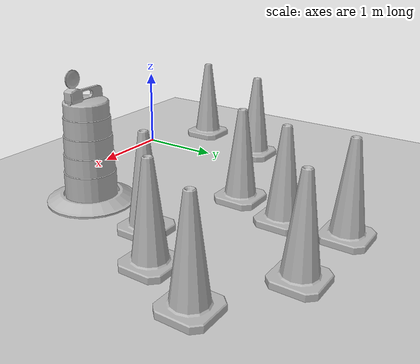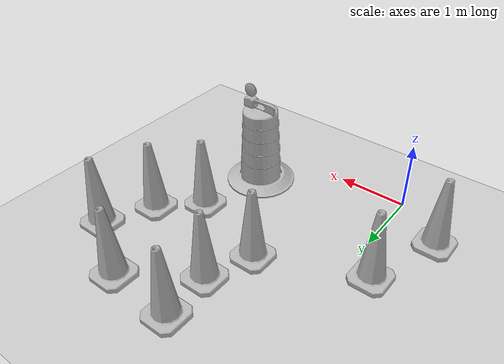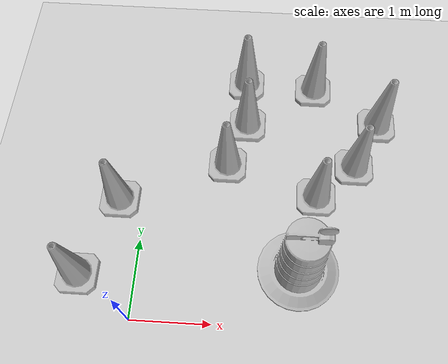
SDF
<sdf version="1.7">
 <world name="default">
  <light name="sun" type="directional">
   <pose>0 0 10 0 -0 0</pose>
   <diffuse>0.8 0.8 0.8 1</diffuse>
   <specular>0.2 0.2 0.2 1</specular>
   <attenuation>
    <range>1000</range>
    <constant>0.9</constant>
    <linear>0.01</linear>
    <quadratic>0.001</quadratic>
   </attenuation>
   <direction>-0.5 0.1 -0.9</direction>
   <spot><inner_angle>0</inner_angle><outer_angle>0</outer_angle><falloff>0</falloff></spot>
  </light>
  <model name="ground_plane">
   <static>1</static>
   <link name="link">
    <collision name="collision">
     <geometry><plane><normal>0 0 1</normal><size>100 100</size></plane></geometry>
     <surface>
      <contact><collide_bitmask>65535</collide_bitmask></contact>
      <friction><ode><mu>100</mu><mu2>50</mu2></ode></friction>
     </surface>
    </collision>
    <visual name="visual">
     <cast_shadows>0</cast_shadows>
     <geometry><plane><normal>0 0 1</normal><size>100 100</size></plane></geometry>
     <material>
      <script><uri>file://media/materials/scripts/gazebo.material</uri><name>Gazebo/Grey</name></script>
     </material>
    </visual>
   </link>
  </model>
  <gravity>0 0 -9.8</gravity>
  <magnetic_field>6e-06 2.3e-05 -4.2e-05</magnetic_field>
  <atmosphere type="adiabatic"/>
  <physics type="ode">
   <max_step_size>0.001</max_step_size>
   <real_time_factor>1</real_time_factor>
   <real_time_update_rate>1000</real_time_update_rate>
  </physics>
  <scene><ambient>0.4 0.4 0.4 1</ambient><background>0.7 0.7 0.7 1</background><shadows>1</shadows></scene>
  <audio><device>default</device></audio>
  <spherical_coordinates>
   <surface_model>EARTH_WGS84</surface_model>
   <latitude_deg>0</latitude_deg>
   <longitude_deg>0</longitude_deg>
   <elevation>0</elevation>
   <heading_deg>0</heading_deg>
  </spherical_coordinates>
  <model name="Construction Cone">
   <link name="link">
    <collision name="collision">
     <geometry>
      <mesh><scale>10 10 10</scale><uri>model://construction_cone/meshes/construction_cone.dae</uri></mesh>
     </geometry>
    </collision>
    <visual name="visual">
     <geometry>
      <mesh><scale>10 10 10</scale><uri>model://construction_cone/meshes/construction_cone.dae</uri></mesh>
     </geometry>
    </visual>
    <inertial>
     <inertia><ixx>1</ixx><ixy>0</ixy><ixz>0</ixz><iyy>1</iyy><iyz>0</iyz><izz>1</izz></inertia>
     <mass>1</mass>
    </inertial>
   </link>
   <pose>-0.711146 0.515814 -1e-05 0 -0 0</pose>
  </model>
  <model name="Construction Barrel">
   <link name="link">
    <inertial>
     <pose>0 0 0.4 0 -0 0</pose>
     <mass>500</mass>
     <inertia><ixx>51.2096</ixx><iyy>51.2096</iyy><izz>25</izz><ixy>0</ixy><ixz>0</ixz><iyz>0</iyz></inertia>
    </inertial>
    <collision name="collision">
     <geometry><mesh><uri>model://construction_barrel/meshes/construction_barrel.dae</uri></mesh></geometry>
    </collision>
    <visual name="visual">
     <geometry><mesh><uri>model://construction_barrel/meshes/construction_barrel.dae</uri></mesh></geometry>
    </visual>
   </link>
   <pose>2.02328 0.730451 0 1e-06 1e-06 -1.8e-05</pose>
  </model>
  <model name="Construction Cone_0">
   <link name="link">
    <collision name="collision">
     <geometry>
      <mesh><scale>10 10 10</scale><uri>model://construction_cone/meshes/construction_cone.dae</uri></mesh>
     </geometry>
    </collision>
    <visual name="visual">
     <geometry>
      <mesh><scale>10 10 10</scale><uri>model://construction_cone/meshes/construction_cone.dae</uri></mesh>
     </geometry>
    </visual>
    <inertial>
     <inertia><ixx>1</ixx><ixy>0</ixy><ixz>0</ixz><iyy>1</iyy><iyz>0</iyz><izz>1</izz></inertia>
     <mass>1</mass>
    </inertial>
   </link>
   <pose>-0.339188 1.55035 -8e-06 0 1e-06 0</pose>
  </model>
  <model name="Construction Cone_1">
   <link name="link">
    <collision name="collision">
     <geometry>
      <mesh><scale>10 10 10</scale><uri>model://construction_cone/meshes/construction_cone.dae</uri></mesh>
     </geometry>
    </collision>
    <visual name="visual">
     <geometry>
      <mesh><scale>10 10 10</scale><uri>model://construction_cone/meshes/construction_cone.dae</uri></mesh>
     </geometry>
    </visual>
    <inertial>
     <inertia><ixx>1</ixx><ixy>0</ixy><ixz>0</ixz><iyy>1</iyy><iyz>0</iyz><izz>1</izz></inertia>
     <mass>1</mass>
    </inertial>
   </link>
   <pose>2.25065 1.73005 -0 0 -0 0</pose>
  </model>
  <model name="Construction Cone_2">
   <link name="link">
    <collision name="collision">
     <geometry>
      <mesh><scale>10 10 10</scale><uri>model://construction_cone/meshes/construction_cone.dae</uri></mesh>
     </geometry>
    </collision>
    <visual name="visual">
     <geometry>
      <mesh><scale>10 10 10</scale><uri>model://construction_cone/meshes/construction_cone.dae</uri></mesh>
     </geometry>
    </visual>
    <inertial>
     <inertia><ixx>1</ixx><ixy>0</ixy><ixz>0</ixz><iyy>1</iyy><iyz>0</iyz><izz>1</izz></inertia>
     <mass>1</mass>
    </inertial>
   </link>
   <pose>1.04743 2.14222 -0 0 -0 0</pose>
  </model>
  <model name="Construction Cone_3">
   <link name="link">
    <collision name="collision">
     <geometry>
      <mesh><scale>10 10 10</scale><uri>model://construction_cone/meshes/construction_cone.dae</uri></mesh>
     </geometry>
    </collision>
    <visual name="visual">
     <geometry>
      <mesh><scale>10 10 10</scale><uri>model://construction_cone/meshes/construction_cone.dae</uri></mesh>
     </geometry>
    </visual>
    <inertial>
     <inertia><ixx>1</ixx><ixy>0</ixy><ixz>0</ixz><iyy>1</iyy><iyz>0</iyz><izz>1</izz></inertia>
     <mass>1</mass>
    </inertial>
   </link>
   <pose>1.2379 3.49272 0 -0 -0 -0</pose>
  </model>
  <model name="Construction Cone_4">
   <link name="link">
    <collision name="collision">
     <geometry>
      <mesh><scale>10 10 10</scale><uri>model://construction_cone/meshes/construction_cone.dae</uri></mesh>
     </geometry>
    </collision>
    <visual name="visual">
     <geometry>
      <mesh><scale>10 10 10</scale><uri>model://construction_cone/meshes/construction_cone.dae</uri></mesh>
     </geometry>
    </visual>
    <inertial>
     <inertia><ixx>1</ixx><ixy>0</ixy><ixz>0</ixz><iyy>1</iyy><iyz>0</iyz><izz>1</izz></inertia>
     <mass>1</mass>
    </inertial>
   </link>
   <pose>3.10676 2.89408 -0 0 -0 0</pose>
  </model>
  <model name="Construction Cone_5">
   <link name="link">
    <collision name="collision">
     <geometry>
      <mesh><scale>10 10 10</scale><uri>model://construction_cone/meshes/construction_cone.dae</uri></mesh>
     </geometry>
    </collision>
    <visual name="visual">
     <geometry>
      <mesh><scale>10 10 10</scale><uri>model://construction_cone/meshes/construction_cone.dae</uri></mesh>
     </geometry>
    </visual>
    <inertial>
     <inertia><ixx>1</ixx><ixy>0</ixy><ixz>0</ixz><iyy>1</iyy><iyz>0</iyz><izz>1</izz></inertia>
     <mass>1</mass>
    </inertial>
   </link>
   <pose>2.76692 2.20658 -0 0 -1e-06 0</pose>
  </model>
  <model name="Construction Cone_6">
   <link name="link">
    <collision name="collision">
     <geometry>
      <mesh><scale>10 10 10</scale><uri>model://construction_cone/meshes/construction_cone.dae</uri></mesh>
     </geometry>
    </collision>
    <visual name="visual">
     <geometry>
      <mesh><scale>10 10 10</scale><uri>model://construction_cone/meshes/construction_cone.dae</uri></mesh>
     </geometry>
    </visual>
    <inertial>
     <inertia><ixx>1</ixx><ixy>0</ixy><ixz>0</ixz><iyy>1</iyy><iyz>0</iyz><izz>1</izz></inertia>
     <mass>1</mass>
    </inertial>
   </link>
   <pose>1.28401 2.79738 -1e-05 0 -0 0</pose>
  </model>
  <model name="Construction Cone_7">
   <link name="link">
    <collision name="collision">
     <geometry>
      <mesh><scale>10 10 10</scale><uri>model://construction_cone/meshes/construction_cone.dae</uri></mesh>
     </geometry>
    </collision>
    <visual name="visual">
     <geometry>
      <mesh><scale>10 10 10</scale><uri>model://construction_cone/meshes/construction_cone.dae</uri></mesh>
     </geometry>
    </visual>
    <inertial>
     <inertia><ixx>1</ixx><ixy>0</ixy><ixz>0</ixz><iyy>1</iyy><iyz>0</iyz><izz>1</izz></inertia>
     <mass>1</mass>
    </inertial>
   </link>
   <pose>2.21209 3.4407 -0 0 -0 0</pose>
  </model>
 </world>
</sdf>
